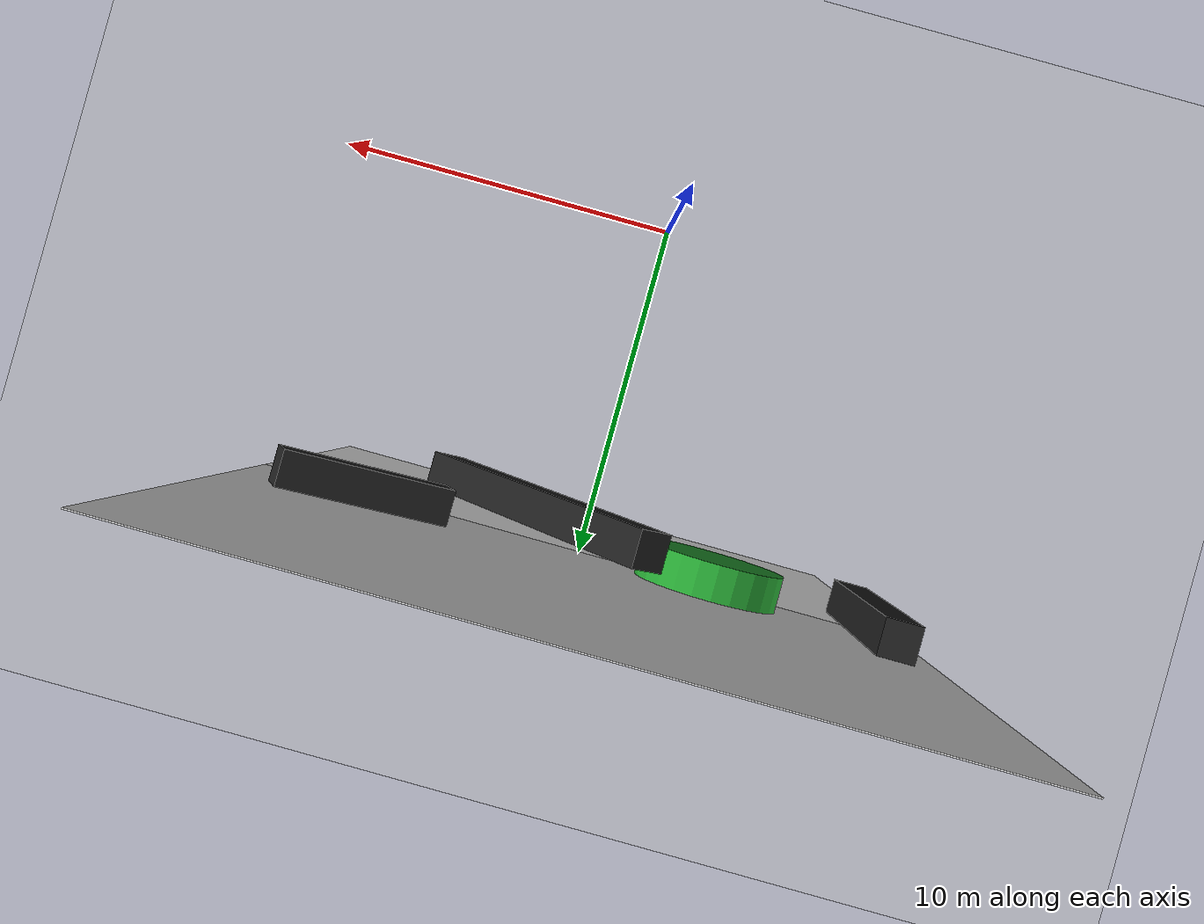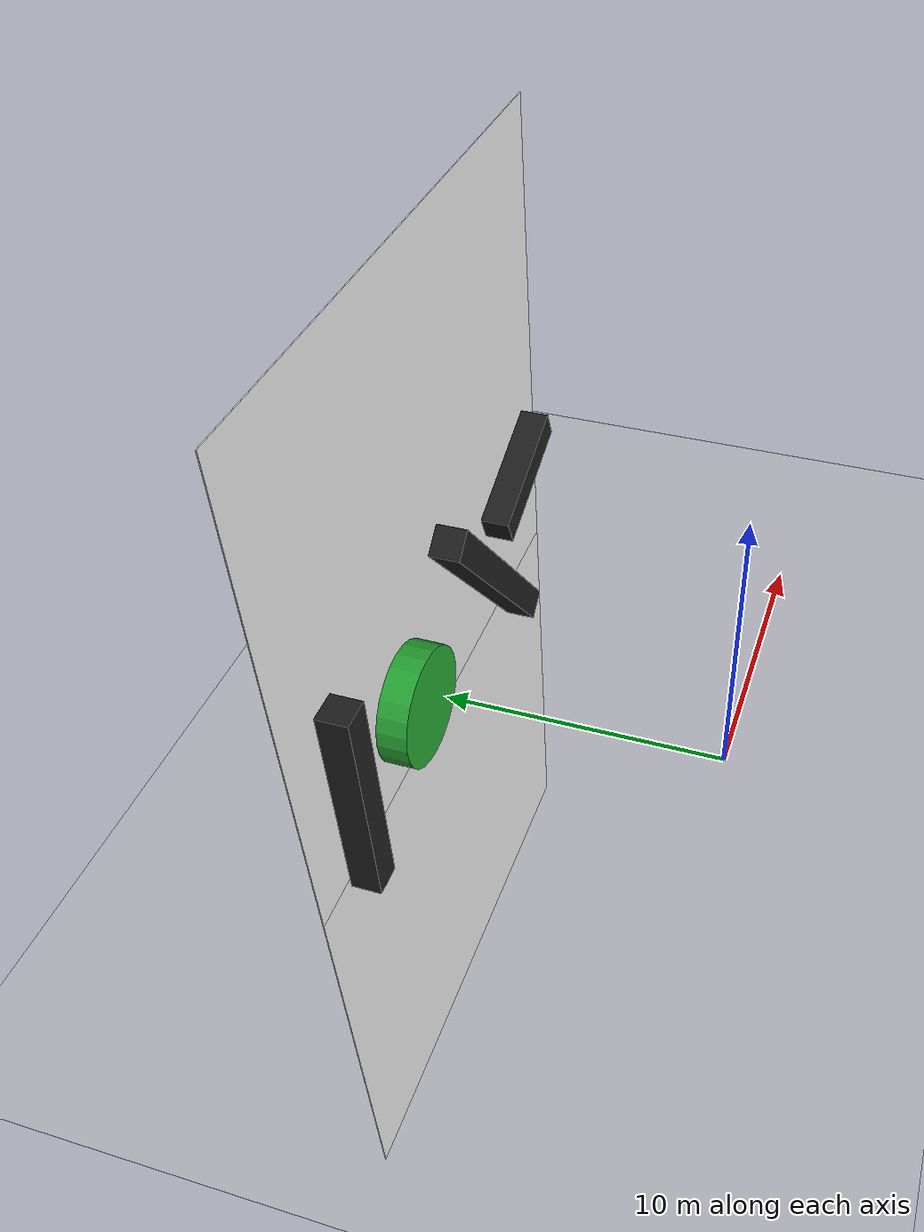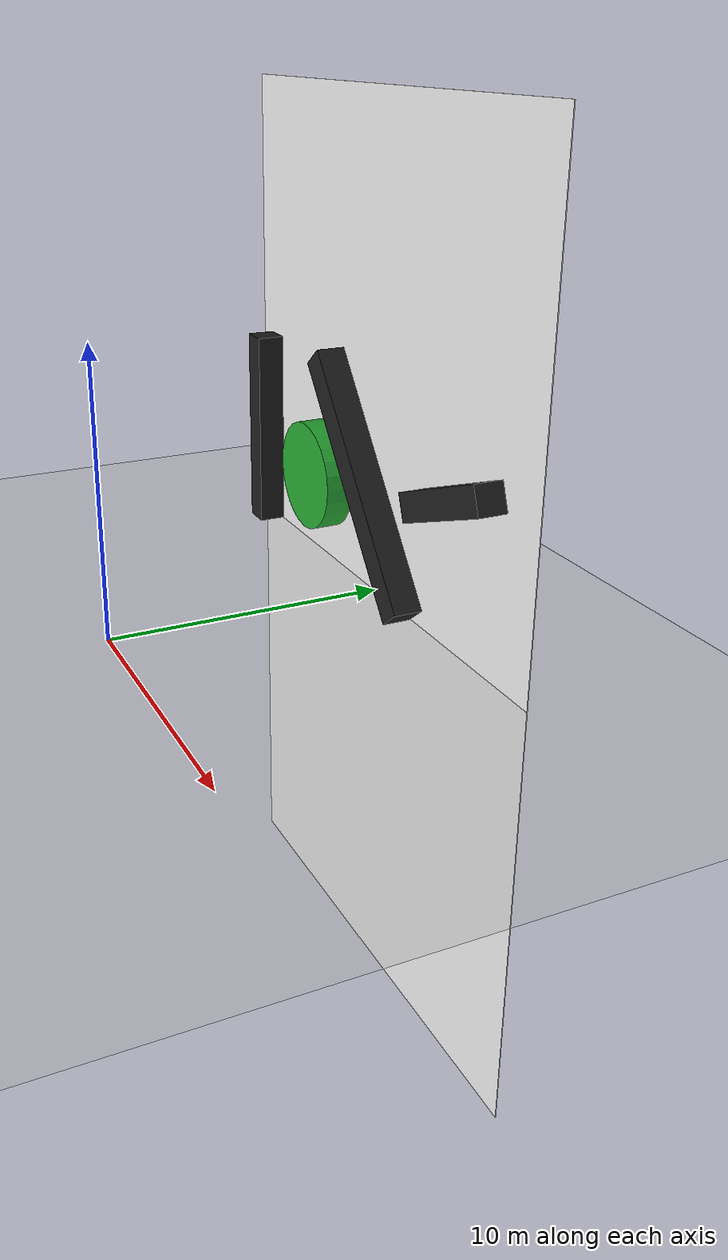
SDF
<sdf version="1.7">
 <world name="default">
  <light name="sun" type="directional">
   <cast_shadows>0</cast_shadows>
   <pose>0 0 10 0 -0 0</pose>
   <diffuse>0.8 0.8 0.8 1</diffuse>
   <specular>0.2 0.2 0.2 1</specular>
   <attenuation>
    <range>1000</range>
    <constant>0.9</constant>
    <linear>0.01</linear>
    <quadratic>0.001</quadratic>
   </attenuation>
   <direction>-0.5 0.1 -0.9</direction>
   <spot><inner_angle>0</inner_angle><outer_angle>0</outer_angle><falloff>0</falloff></spot>
  </light>
  <model name="ground_plane">
   <static>1</static>
   <link name="link">
    <collision name="collision">
     <geometry><plane><normal>0 0 1</normal><size>100 100</size></plane></geometry>
     <surface>
      <contact><collide_bitmask>65535</collide_bitmask></contact>
      <friction><ode><mu>100</mu><mu2>50</mu2></ode></friction>
     </surface>
    </collision>
    <visual name="visual">
     <cast_shadows>0</cast_shadows>
     <geometry><plane><normal>0 0 1</normal><size>100 100</size></plane></geometry>
     <material>
      <script><uri>file://media/materials/scripts/gazebo.material</uri><name>Gazebo/Grey</name></script>
     </material>
    </visual>
   </link>
  </model>
  <gravity>0 0 -9.8</gravity>
  <magnetic_field>6e-06 2.3e-05 -4.2e-05</magnetic_field>
  <atmosphere type="adiabatic"/>
  <physics type="ode">
   <max_step_size>0.001</max_step_size>
   <real_time_factor>1</real_time_factor>
   <real_time_update_rate>1000</real_time_update_rate>
  </physics>
  <scene><ambient>0.4 0.4 0.4 1</ambient><background>0.7 0.7 0.7 1</background><shadows>1</shadows></scene>
  <spherical_coordinates>
   <surface_model>EARTH_WGS84</surface_model>
   <latitude_deg>0</latitude_deg>
   <longitude_deg>0</longitude_deg>
   <elevation>0</elevation>
   <heading_deg>0</heading_deg>
  </spherical_coordinates>
  <model name="Untitled_0">
   <link name="link_0">
    <inertial>
     <mass>1</mass>
     <inertia>
      <ixx>0.166667</ixx>
      <ixy>0</ixy>
      <ixz>0</ixz>
      <iyy>0.166667</iyy>
      <iyz>0</iyz>
      <izz>0.166667</izz>
     </inertia>
    </inertial>
    <gravity>0</gravity>
    <visual name="visual">
     <geometry><box><size>1 1 7.47096</size></box></geometry>
     <material>
      <lighting>1</lighting>
      <script><uri>file://media/materials/scripts/gazebo.material</uri><name>Gazebo/Black</name></script>
      <shader type="pixel"><normal_map>__default__</normal_map></shader>
      <ambient>0 0 0 1</ambient>
      <diffuse>0 0 0 1</diffuse>
      <specular>0.1 0.1 0.1 1</specular>
      <emissive>0 0 0 1</emissive>
     </material>
    </visual>
    <collision name="collision">
     <geometry><box><size>1 1 7.47096</size></box></geometry>
     <surface>
      <friction>
       <ode><mu>1</mu><mu2>1</mu2><fdir1>0 0 0</fdir1><slip1>0</slip1><slip2>0</slip2></ode>
       <torsional>
        <coefficient>1</coefficient>
        <patch_radius>0</patch_radius>
        <surface_radius>0</surface_radius>
        <use_patch_radius>1</use_patch_radius>
        <ode><slip>0</slip></ode>
       </torsional>
      </friction>
      <bounce><restitution_coefficient>0</restitution_coefficient><threshold>1e+06</threshold></bounce>
      <contact>
       <collide_without_contact>0</collide_without_contact>
       <collide_without_contact_bitmask>1</collide_without_contact_bitmask>
       <collide_bitmask>1</collide_bitmask>
       <ode>
        <soft_cfm>0</soft_cfm>
        <soft_erp>0.2</soft_erp>
        <kp>1e+13</kp>
        <kd>1</kd>
        <max_vel>0.01</max_vel>
        <min_depth>0</min_depth>
       </ode>
       <bullet>
        <split_impulse>1</split_impulse>
        <split_impulse_penetration_threshold>-0.01</split_impulse_penetration_threshold>
        <soft_cfm>0</soft_cfm>
        <soft_erp>0.2</soft_erp>
        <kp>1e+13</kp>
        <kd>1</kd>
       </bullet>
      </contact>
     </surface>
    </collision>
   </link>
   <static>1</static>
   <pose>-8.10011 9.21128 4.00432 0 -0 0</pose>
  </model>
  <model name="Untitled_0_clone_0_clone">
   <link name="link_0">
    <inertial>
     <mass>1</mass>
     <inertia>
      <ixx>0.166667</ixx>
      <ixy>0</ixy>
      <ixz>0</ixz>
      <iyy>0.166667</iyy>
      <iyz>0</iyz>
      <izz>0.166667</izz>
     </inertia>
    </inertial>
    <gravity>0</gravity>
    <visual name="visual">
     <geometry><box><size>1 1 9.50746</size></box></geometry>
     <material>
      <lighting>1</lighting>
      <script><uri>file://media/materials/scripts/gazebo.material</uri><name>Gazebo/Black</name></script>
      <shader type="pixel"><normal_map>__default__</normal_map></shader>
      <ambient>0 0 0 1</ambient>
      <diffuse>0 0 0 1</diffuse>
      <specular>0.1 0.1 0.1 1</specular>
      <emissive>0 0 0 1</emissive>
     </material>
    </visual>
    <collision name="collision">
     <geometry><box><size>1 1 9.50746</size></box></geometry>
     <surface>
      <friction>
       <ode><mu>1</mu><mu2>1</mu2><fdir1>0 0 0</fdir1><slip1>0</slip1><slip2>0</slip2></ode>
       <torsional>
        <coefficient>1</coefficient>
        <patch_radius>0</patch_radius>
        <surface_radius>0</surface_radius>
        <use_patch_radius>1</use_patch_radius>
        <ode><slip>0</slip></ode>
       </torsional>
      </friction>
      <bounce><restitution_coefficient>0</restitution_coefficient><threshold>1e+06</threshold></bounce>
      <contact>
       <collide_without_contact>0</collide_without_contact>
       <collide_without_contact_bitmask>1</collide_without_contact_bitmask>
       <collide_bitmask>1</collide_bitmask>
       <ode>
        <soft_cfm>0</soft_cfm>
        <soft_erp>0.2</soft_erp>
        <kp>1e+13</kp>
        <kd>1</kd>
        <max_vel>0.01</max_vel>
        <min_depth>0</min_depth>
       </ode>
       <bullet>
        <split_impulse>1</split_impulse>
        <split_impulse_penetration_threshold>-0.01</split_impulse_penetration_threshold>
        <soft_cfm>0</soft_cfm>
        <soft_erp>0.2</soft_erp>
        <kp>1e+13</kp>
        <kd>1</kd>
       </bullet>
      </contact>
     </surface>
    </collision>
   </link>
   <static>1</static>
   <pose>1.48906 8.66089 4.74058 0 -0.678952 0</pose>
  </model>
  <model name="Untitled2">
   <link name="link_2">
    <inertial>
     <mass>20.383</mass>
     <inertia><ixx>1883.11</ixx><ixy>0</ixy><ixz>0</ixz><iyy>2554.49</iyy><iyz>0</iyz><izz>671.385</izz></inertia>
    </inertial>
    <visual name="visual">
     <geometry><box><size>19.8811 0.030727 33.2961</size></box></geometry>
     <material>
      <lighting>1</lighting>
      <script><uri>file://media/materials/scripts/gazebo.material</uri><name>Gazebo/White</name></script>
      <shader type="pixel"><normal_map>__default__</normal_map></shader>
      <ambient>1 1 1 1</ambient>
      <diffuse>1 1 1 1</diffuse>
      <specular>0 0 0 1</specular>
      <emissive>0 0 0 1</emissive>
     </material>
    </visual>
    <collision name="collision">
     <geometry><box><size>19.8811 0.030727 33.2961</size></box></geometry>
     <surface>
      <friction>
       <ode><mu>1</mu><mu2>1</mu2><fdir1>0 0 0</fdir1><slip1>0</slip1><slip2>0</slip2></ode>
       <torsional>
        <coefficient>1</coefficient>
        <patch_radius>0</patch_radius>
        <surface_radius>0</surface_radius>
        <use_patch_radius>1</use_patch_radius>
        <ode><slip>0</slip></ode>
       </torsional>
      </friction>
      <bounce><restitution_coefficient>0</restitution_coefficient><threshold>1e+06</threshold></bounce>
      <contact>
       <collide_without_contact>0</collide_without_contact>
       <collide_without_contact_bitmask>1</collide_without_contact_bitmask>
       <collide_bitmask>1</collide_bitmask>
       <ode>
        <soft_cfm>0</soft_cfm>
        <soft_erp>0.2</soft_erp>
        <kp>1e+13</kp>
        <kd>1</kd>
        <max_vel>0.01</max_vel>
        <min_depth>0</min_depth>
       </ode>
       <bullet>
        <split_impulse>1</split_impulse>
        <split_impulse_penetration_threshold>-0.01</split_impulse_penetration_threshold>
        <soft_cfm>0</soft_cfm>
        <soft_erp>0.2</soft_erp>
        <kp>1e+13</kp>
        <kd>1</kd>
       </bullet>
      </contact>
     </surface>
    </collision>
   </link>
   <static>1</static>
   <pose>-0.103476 10.0194 0.5 0 -0 0</pose>
  </model>
  <model name="Untitled4_2">
   <link name="link_3">
    <inertial>
     <mass>1</mass>
     <inertia><ixx>0.145833</ixx><ixy>0</ixy><ixz>0</ixz><iyy>0.145833</iyy><iyz>0</iyz><izz>0.125</izz></inertia>
    </inertial>
    <gravity>0</gravity>
    <visual name="visual">
     <geometry><cylinder><radius>2.01236</radius><length>1</length></cylinder></geometry>
     <material>
      <lighting>1</lighting>
      <script><uri>file://media/materials/scripts/gazebo.material</uri><name>Gazebo/Green</name></script>
      <shader type="pixel"><normal_map>__default__</normal_map></shader>
      <ambient>0 1 0 1</ambient>
      <diffuse>0 1 0 1</diffuse>
      <specular>0.1 0.1 0.1 1</specular>
      <emissive>0 0 0 1</emissive>
     </material>
    </visual>
    <collision name="collision">
     <geometry><cylinder><radius>2.01236</radius><length>1</length></cylinder></geometry>
     <surface>
      <friction>
       <ode><mu>1</mu><mu2>1</mu2><fdir1>0 0 0</fdir1><slip1>0</slip1><slip2>0</slip2></ode>
       <torsional>
        <coefficient>1</coefficient>
        <patch_radius>0</patch_radius>
        <surface_radius>0</surface_radius>
        <use_patch_radius>1</use_patch_radius>
        <ode><slip>0</slip></ode>
       </torsional>
      </friction>
      <bounce><restitution_coefficient>0</restitution_coefficient><threshold>1e+06</threshold></bounce>
      <contact>
       <collide_without_contact>0</collide_without_contact>
       <collide_without_contact_bitmask>1</collide_without_contact_bitmask>
       <collide_bitmask>1</collide_bitmask>
       <ode>
        <soft_cfm>0</soft_cfm>
        <soft_erp>0.2</soft_erp>
        <kp>1e+13</kp>
        <kd>1</kd>
        <max_vel>0.01</max_vel>
        <min_depth>0</min_depth>
       </ode>
       <bullet>
        <split_impulse>1</split_impulse>
        <split_impulse_penetration_threshold>-0.01</split_impulse_penetration_threshold>
        <soft_cfm>0</soft_cfm>
        <soft_erp>0.2</soft_erp>
        <kp>1e+13</kp>
        <kd>1</kd>
       </bullet>
      </contact>
     </surface>
    </collision>
   </link>
   <static>1</static>
   <pose>-3.56332 9.29933 3.43256 1.57649 -0 0</pose>
  </model>
  <model name="Untitled_0_clone_0_clone_clone">
   <link name="link_0">
    <inertial>
     <mass>1</mass>
     <inertia>
      <ixx>0.166667</ixx>
      <ixy>0</ixy>
      <ixz>0</ixz>
      <iyy>0.166667</iyy>
      <iyz>0</iyz>
      <izz>0.166667</izz>
     </inertia>
    </inertial>
    <gravity>0</gravity>
    <visual name="visual">
     <geometry><box><size>1 1 4.70672</size></box></geometry>
     <material>
      <lighting>1</lighting>
      <script><uri>file://media/materials/scripts/gazebo.material</uri><name>Gazebo/Black</name></script>
      <shader type="pixel"><normal_map>__default__</normal_map></shader>
      <ambient>0 0 0 1</ambient>
      <diffuse>0 0 0 1</diffuse>
      <specular>0.1 0.1 0.1 1</specular>
      <emissive>0 0 0 1</emissive>
     </material>
    </visual>
    <collision name="collision">
     <geometry><box><size>1 1 4.70672</size></box></geometry>
     <surface>
      <friction>
       <ode><mu>1</mu><mu2>1</mu2><fdir1>0 0 0</fdir1><slip1>0</slip1><slip2>0</slip2></ode>
       <torsional>
        <coefficient>1</coefficient>
        <patch_radius>0</patch_radius>
        <surface_radius>0</surface_radius>
        <use_patch_radius>1</use_patch_radius>
        <ode><slip>0</slip></ode>
       </torsional>
      </friction>
      <bounce><restitution_coefficient>0</restitution_coefficient><threshold>1e+06</threshold></bounce>
      <contact>
       <collide_without_contact>0</collide_without_contact>
       <collide_without_contact_bitmask>1</collide_without_contact_bitmask>
       <collide_bitmask>1</collide_bitmask>
       <ode>
        <soft_cfm>0</soft_cfm>
        <soft_erp>0.2</soft_erp>
        <kp>1e+13</kp>
        <kd>1</kd>
        <max_vel>0.01</max_vel>
        <min_depth>0</min_depth>
       </ode>
       <bullet>
        <split_impulse>1</split_impulse>
        <split_impulse_penetration_threshold>-0.01</split_impulse_penetration_threshold>
        <soft_cfm>0</soft_cfm>
        <soft_erp>0.2</soft_erp>
        <kp>1e+13</kp>
        <kd>1</kd>
       </bullet>
      </contact>
     </surface>
    </collision>
   </link>
   <static>1</static>
   <pose>6.09516 9.29343 5.49342 0 1.20813 0</pose>
  </model>
 </world>
</sdf>
